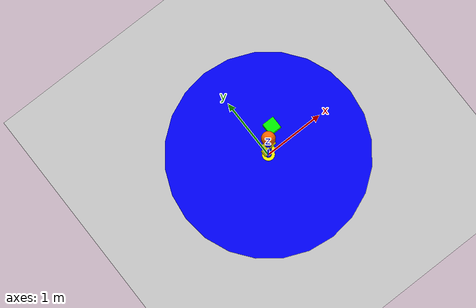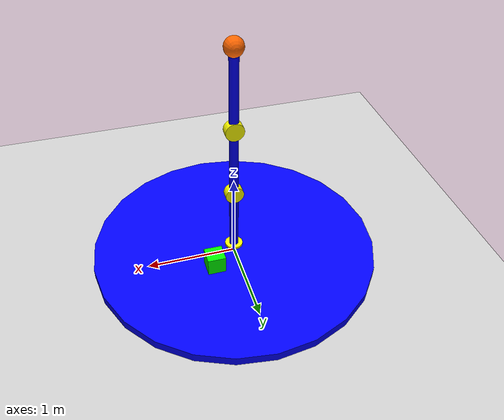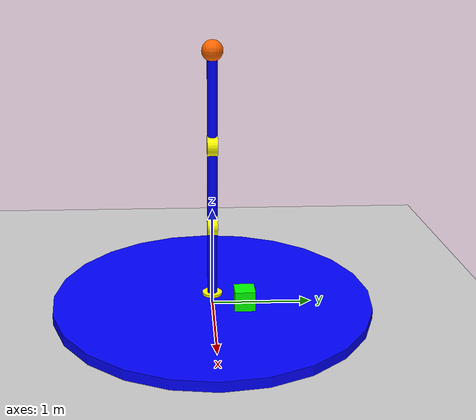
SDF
<?xml version="1.0" ?>
<sdf version="1.5">
  <world name="default">
    <!-- A global light source -->
    <include>
      <uri>model://sun</uri>
    </include>
    <!-- A ground plane -->
    <include>
      <uri>model://ground_plane</uri>
    </include>

    <!-- A testing model that includes the robo_arm model -->
    <model name="my_robo_arm">
      <include>
        <uri>model://roboarm1</uri>
      </include>

      <!-- Attach the plugin to this model -->
      <plugin name="robo_arm_control" filename="librobo_arm_plugin.so"/>
    </model>

  </world>
</sdf>

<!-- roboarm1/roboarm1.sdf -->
<sdf version='1.5'>
	<model name="roboarm1">
		<static>false</static>
		<pose>0 0 0.05 0 0 0</pose>
			<link name='chassis'>
		<self_collide>true</self_collide>
		<must_be_base_link>1</must_be_base_link>
		<inertial><mass>5</mass></inertial>
				<pose>0 0 0 0 0 0</pose>
				<collision name='collision'>
				<geometry>
					<cylinder>
						<radius>1.6</radius>
						<length>.1</length>
					</cylinder>
				</geometry>
				<surface>
				<friction>
				  <ode>
				    <mu>1.0</mu>
				    <mu2>1.0</mu2>
				   </ode>
 			<bullet>
		           <friction>1.0</friction>
		           <friction2>1.0</friction2>

		         </bullet>
				</friction>
			     </surface>
				</collision>

				<visual name='visual'>
				<geometry>
					<cylinder>
						<radius>1.6</radius>
						<length>.1</length>
					</cylinder>
				</geometry>
				 <material>
    					<ambient>0 0 1 1</ambient>
    					<diffuse>0 0 1 1</diffuse>
    					<specular>0.1 0.1 0.1 1</specular>
    					<emissive>0 0 0 0</emissive>
  				</material>
				</visual>
			</link>
		<link name="shape1">
			<pose>0 0 0.4 0 0 0</pose>

		    <collision name='caster_collision_base'>
			    <pose>0 0 0 0 0 0</pose>
			    <geometry>
				<cylinder>
					<radius>.1</radius>
					<length>.1</length>
				</cylinder>

			    </geometry>

			    <surface>
			      <friction>
				<ode>
				  <mu>0</mu>
				  <mu2>0</mu2>
				  <slip1>1.0</slip1>
				  <slip2>1.0</slip2>
				</ode>
			      </friction>
			    </surface>
		  </collision>

			  <visual name='caster_visual_base'>
			    <pose>0 0 -.35 0 0 0</pose>
			    <geometry>
			      <cylinder>
					<radius>.1</radius>
					<length>.05</length>
				</cylinder>
			    </geometry>
				 <material>
    					<ambient>1 1 0 1</ambient>
    					<diffuse>1 1 0 1</diffuse>
    					<specular>0.1 0.1 0.1 1</specular>
    					<emissive>0 0 0 0</emissive>
  				</material>
			  </visual>

			<collision name="collision">
				<geometry>
					<cylinder>
						<radius>.05</radius>
						<length>.8</length>
					</cylinder>
				</geometry>
			</collision>
			<visual name="visual">
				<geometry>
					<cylinder>
						<radius>.05</radius>
						<length>.8</length>
					</cylinder>
				</geometry>
				<material>
    					<ambient>0 0 1 1</ambient>
    					<diffuse>0 0 1 1</diffuse>
    					<specular>0.1 0.1 0.1 1</specular>
    					<emissive>0 0 0 0</emissive>
  				</material>
			</visual>

		    <collision name='caster_collision_shape1'>
			    <pose>0 0 .4 0 1.5707 1.5707</pose>
			    <geometry>
				<cylinder>
					<radius>.1</radius>
					<length>.1</length>
				</cylinder>
			    </geometry>

			    <surface>
			      <friction>
				<ode>
				  <mu>0</mu>
				  <mu2>0</mu2>
				  <slip1>1.0</slip1>
				  <slip2>1.0</slip2>
				</ode>
			      </friction>
			    </surface>
		  </collision>

			  <visual name='caster_visual_shape1'>
			    <pose>0 0 .4 0 1.5707 1.5707</pose>
			    <geometry>
			      <cylinder>
					<radius>.1</radius>
					<length>.1</length>
				</cylinder>
			    </geometry>
				 <material>
    					<ambient>1 1 0 1</ambient>
    					<diffuse>1 1 0 1</diffuse>
    					<specular>0.1 0.1 0.1 1</specular>
    					<emissive>0 0 0 0</emissive>
  				</material>
			  </visual>

		 </link>
		<link name="shape2">
		<self_collide>true</self_collide>
			<pose>0 0 1.2 0 0 0</pose>
			<collision name="collision">
				<geometry>
					<cylinder>
						<radius>.05</radius>
						<length>.8</length>
					</cylinder>
				</geometry>
			</collision>
			<visual name="visual">
				<geometry>
					<cylinder>
						<radius>.05</radius>
						<length>.8</length>
					</cylinder>
				</geometry>
				 <material>
    					<ambient>0 0 1 1</ambient>
    					<diffuse>0 0 1 1</diffuse>
    					<specular>0.1 0.1 0.1 1</specular>
    					<emissive>0 0 0 0</emissive>
  				</material>
			</visual>
		    <collision name='caster_collision_shape2'>
			    <pose>0 0 .4 0 1.5707 1.5707</pose>
			    <geometry>
				<cylinder>
					<radius>.1</radius>
					<length>.1</length>
				</cylinder>
			    </geometry>

			    <surface>
			      <friction>
				<ode>
				  <mu>0</mu>
				  <mu2>0</mu2>
				  <slip1>1.0</slip1>
				  <slip2>1.0</slip2>
				</ode>
			      </friction>
			    </surface>
		  </collision>

			  <visual name='caster_visual_shape2'>
			    <pose>0 0 .4 0 1.5707 1.5707</pose>
			    <geometry>
			      <cylinder>
					<radius>.1</radius>
					<length>.1</length>
				</cylinder>
			    </geometry>
				 <material>
    					<ambient>1 1 0 1</ambient>
    					<diffuse>1 1 0 1</diffuse>
    					<specular>0.1 0.1 0.1 1</specular>
    					<emissive>0 0 0 0</emissive>
  				</material>
			  </visual>
		</link>
		<link name="shape3">
		<self_collide>true</self_collide>
			<pose>0 0 2 0 0 0</pose>
			<collision name="collision">
				<geometry>
					<cylinder>
						<radius>.05</radius>
						<length>.8</length>
					</cylinder>

				</geometry>
			</collision>
			<visual name="visual">
				<geometry>
					<cylinder>
						<radius>.05</radius>
						<length>.8</length>
					</cylinder>
				</geometry>
				 <material>
    					<ambient>0 0 1 1</ambient>
    					<diffuse>0 0 1 1</diffuse>
    					<specular>0.1 0.1 0.1 1</specular>
    					<emissive>0 0 0 0</emissive>
  				</material>
			</visual>
		</link>
		<link name="sensorShape">
		<self_collide>true</self_collide>
			 <pose>0 0 2.49 0 1.5707 1.5707</pose>
			<collision name='caster_collision_shape3'>

			    <geometry>
				<sphere>
               			 <radius>.1</radius>
             			 </sphere>
			    </geometry>
			</collision>

			  <visual name='caster_visual_shape3'>

			    <geometry>
			     <sphere>
                		<radius>.1</radius>
              		    </sphere>
			    </geometry>
				 <material>
    					<ambient>1 .4 0 1</ambient>
    					<diffuse>1 .4 0 1</diffuse>
    					<specular>0.1 0.1 0.1 1</specular>
    					<emissive>0 0 0 0</emissive>
  				</material>
			  </visual>

			<sensor name='main_sensor' type='contact'>
			  <contact>
			    <collision>caster_collision_shape3</collision>
			  </contact>

			</sensor>
		</link>
		<link name="metaGFM">
		   <pose>.3 .3 .15 0 0 0</pose>
		   <inertial><mass>10</mass></inertial>
		   <collision name="collision">
		      <geometry>
			  <box>
			     <size>.2 .2 .2</size>
			  </box>
		      </geometry>
		     <surface>
		       <friction>
		         <ode>
		           <mu>1.0</mu>
		           <mu2>1.0</mu2>

		         </ode>

		         <bullet>
		           <friction>1.0</friction>
		           <friction2>1.0</friction2>

		         </bullet>
		       </friction>
		     </surface>
		   </collision>
		   <visual name="visual">
		      <geometry>
			  <box>
			     <size>.2 .2 .2</size>
			  </box>
		      </geometry>
		      <material>
			  <ambient>0 1 0 1</ambient>
			  <diffuse>0 1 0 1</diffuse>
			  <specular>0.1 0.1 0.1 1</specular>
			  <emissive>0 0 0 0</emissive>
		      </material>
		   </visual>
		</link>

		<joint type="revolute" name="shape1_revolute">
			<pose>0 0 -.4 0 0 0</pose>
			<child>shape1</child>
			<parent>chassis</parent>
			<axis>
				<xyz>0 0 1</xyz>

			</axis>
		</joint>
		<joint type="revolute" name="shape2_revolute">
			<pose>0 0 -.4 0 0 0</pose>
			<child>shape2</child>
			<parent>shape1</parent>
			<axis>
				<xyz>0 1 0</xyz>
				<dynamics>
					<friction>100</friction>
				</dynamics>
			</axis>
		</joint>
		<joint type="revolute" name="shape3_revolute">
			<pose>0 0 -.4 0 0 0</pose>
			<child>shape3</child>
			<parent>shape2</parent>
			<axis>
				<xyz>0 1 0</xyz>
				<dynamics>
					<friction>100</friction>
				</dynamics>
			</axis>
		</joint>
		<joint name="fixed to ground" type="revolute">
  			<parent>world</parent>
  			<child>roboarm1::chassis</child>
			<axis>
			 <limit>
			   <lower>0</lower>
			   <upper>0</upper>
			 </limit>
			 <xyz>0 0 1</xyz>
			 </axis>
	    </joint>
	<joint name="fixedSensor" type="revolute">
  			<parent>sensorShape</parent>
  			<child>shape3</child>
			<axis>
			 <limit>
			   <lower>0</lower>
			   <upper>0</upper>
			 </limit>
			 <xyz>0 0 1</xyz>
			 </axis>
	    </joint>
 </model>
</sdf>
